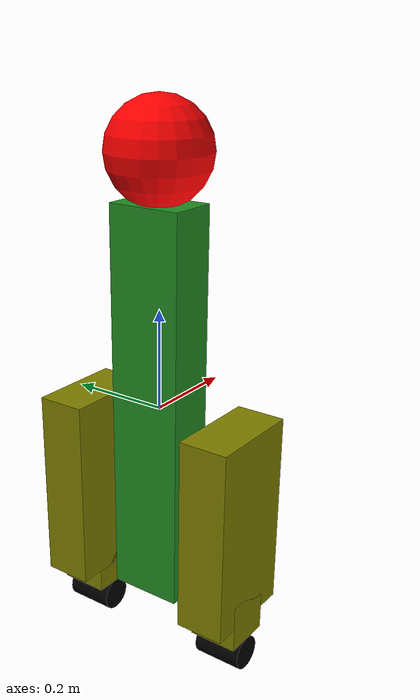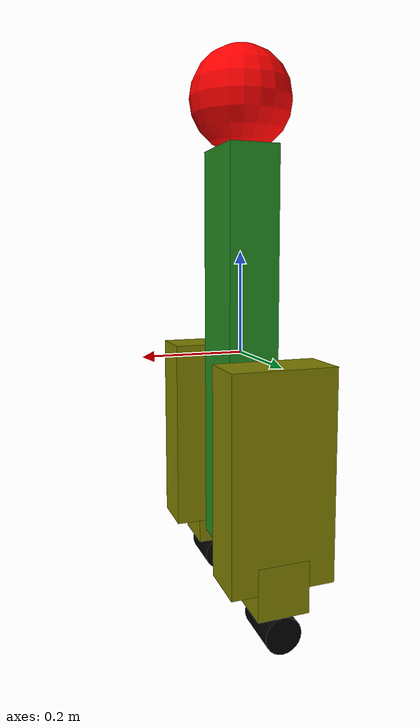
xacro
<?xml version="1.0"?>
<robot name="simplebot" xmlns:xacro="http://ros.org/wiki/xacro">

    <material name="blue">
        <color rgba="0 0 0.8 1" />
    </material>
    <material name="black">
        <color rgba="0 0 0 1" />
    </material>
    <material name="white">
        <color rgba="1 1 1 1" />
    </material>

    <material name="red">
        <color rgba="1 0 0 1" />
    </material>

    <material name="olive">
        <color rgba="0.502 0.502 0 1" />
    </material>

    <material name="forest_green">
        <color rgba="0.133 0.545 0.133 1" />
    </material>

    <xacro:property name="width" value="0.15" />
    <xacro:property name="bodylen" value="0.8" />
    <xacro:property name="wheel_width" value="0.2" />
    <xacro:property name="wheeldiam" value="0.07" />
    <xacro:property name="baselen" value="0.4" />
    <xacro:property name="head_width" value="0.1" />
    <xacro:property name="pi" value="3.141592" />

    <xacro:property name="leglen" value="0.4" />

    <xacro:macro name="default_inertial" params="mass">
        <inertial>
            <mass value="${mass}" />
            <inertia ixx="1.0" ixy="0.0" ixz="0.0" iyy="1.0" iyz="0.0" izz="1.0" />
            <origin />
        </inertial>
    </xacro:macro>

    <link name="base_link">
        <visual>
            <geometry>
                <box size="0.1 ${width} ${bodylen}" />
            </geometry>
            <material name="forest_green" />
        </visual>
        <collision>
            <geometry>
                <box size="0.1 ${width} ${bodylen}" />
            </geometry>
        </collision>
        <xacro:default_inertial mass="10" />
    </link>

    <xacro:macro name="wheel" params="prefix suffix reflect">

        <link name="${prefix}_${suffix}_wheel">
            <visual>
                <origin xyz="0 0 0" rpy="${pi/2} 0 0" />
                <geometry>
                    <cylinder radius="${wheeldiam/2}" length="0.1" />
                </geometry>
                <material name="black" />
            </visual>
            <collision>
                <origin xyz="0 0 0" rpy="${pi/2} 0 0" />
                <geometry>
                    <cylinder radius="${wheeldiam/2}" length="0.1" />
                </geometry>
            </collision>
            <xacro:default_inertial mass="1" />
        </link>
        <joint name="${prefix}_${suffix}_wheel_joint" type="continuous">
            <axis xyz="0 1 0" rpy="0 0 0" />
            <parent link="${prefix}_base" />
            <child link="${prefix}_${suffix}_wheel" />
            <origin xyz="${baselen*reflect/3} 0 -${wheeldiam/2+.05}" rpy="0 0 0" />
        </joint>
    </xacro:macro>

    <xacro:macro name="leg" params="prefix reflect">
        <link name="${prefix}_leg">
            <visual>
                <geometry>
                    <box size="${leglen} 0.1 0.2" />
                </geometry>
                <origin xyz="0 ${reflect*(width+.02)} -${leglen/2}" rpy="0 ${pi/2} 0" />
                <material name="olive" />
            </visual>
            <collision>
                <geometry>
                    <box size="${leglen} 0.1 0.2" />
                </geometry>
                <origin xyz="0 ${reflect*(width+.02)} -${leglen/2}" rpy="0 ${pi/2} 0" />
            </collision>
            <xacro:default_inertial mass="10" />
        </link>

        <joint name="base_to_${prefix}_leg_joint" type="revolute">
            <child link="${prefix}_leg" />
            <parent link="base_link" />
            <origin xyz="0 0 0.0" rpy="0 0 0" />
            <axis xyz="0 1 0" rpy="0 0 0" />
            <limit upper="${90/180*pi}" lower="-${90/180*pi}" effort="10" velocity="10" />
        </joint>

        <link name="${prefix}_base">
            <visual>
                <geometry>
                    <box size="0.1 0.1 0.1" />
                </geometry>
                <material name="olive" />
            </visual>
            <collision>
                <geometry>
                    <box size="0.1 0.1 0.1" />
                </geometry>
            </collision>
            <xacro:default_inertial mass="10" />
        </link>

        <joint name="${prefix}_base_joint" type="fixed">
            <parent link="${prefix}_leg" />
            <child link="${prefix}_base" />
            <origin xyz="0 ${reflect*(width+.02)} ${-leglen}" />
        </joint>
        <xacro:wheel prefix="${prefix}" suffix="inverted" reflect="0" />
    </xacro:macro>
    <xacro:leg prefix="right" reflect="-1" />
    <xacro:leg prefix="left" reflect="1" />

    <link name="head">
        <visual>
            <geometry>
                <sphere radius="${head_width}" />
            </geometry>
            <material name="red" />
        </visual>
        <collision>
            <geometry>
                <sphere radius="${head_width}" />
            </geometry>
        </collision>
        <xacro:default_inertial mass="2" />
    </link>
    <joint name="head_swivel" type="fixed">
        <parent link="base_link" />
        <child link="head" />
        <axis xyz="0 0 1" />
        <origin xyz="0 0 ${bodylen/2+head_width-0.01}" />
    </joint>

    <gazebo reference="base_link">
        <material>Gazebo/Green</material>
    </gazebo>
    <gazebo reference="head">
        <material>Gazebo/Red</material>
    </gazebo>

    <gazebo reference="right_leg">
        <material>Gazebo/WoodPallet</material>
    </gazebo>
    <gazebo reference="left_leg">
        <material>Gazebo/WoodPallet</material>
    </gazebo>
    <gazebo reference="right_base">
        <material>Gazebo/WoodPallet</material>
    </gazebo>
    <gazebo reference="left_base">
        <material>Gazebo/WoodPallet</material>
    </gazebo>
    <gazebo reference="right_inverted_wheel">
        <material>Gazebo/Black</material>
    </gazebo>
    <gazebo reference="left_inverted_wheel">
        <material>Gazebo/Black</material>
    </gazebo>

    <!-- ros2_control -->
    <ros2_control name="GazeboSystem" type="system">
        <hardware>
            <plugin>gazebo_ros2_control/GazeboSystem</plugin>
        </hardware>

    </ros2_control>
    <gazebo>
        <plugin filename="libgazebo_ros2_control.so" name="gazebo_ros2_control">
            <robot_param>robot_description</robot_param>
            <robot_param_node>robot_state_publisher</robot_param_node>
            <parameters>$(find aldrin_sim)/config/move_group_controller.yaml</parameters>
        </plugin>
    </gazebo>
</robot>
